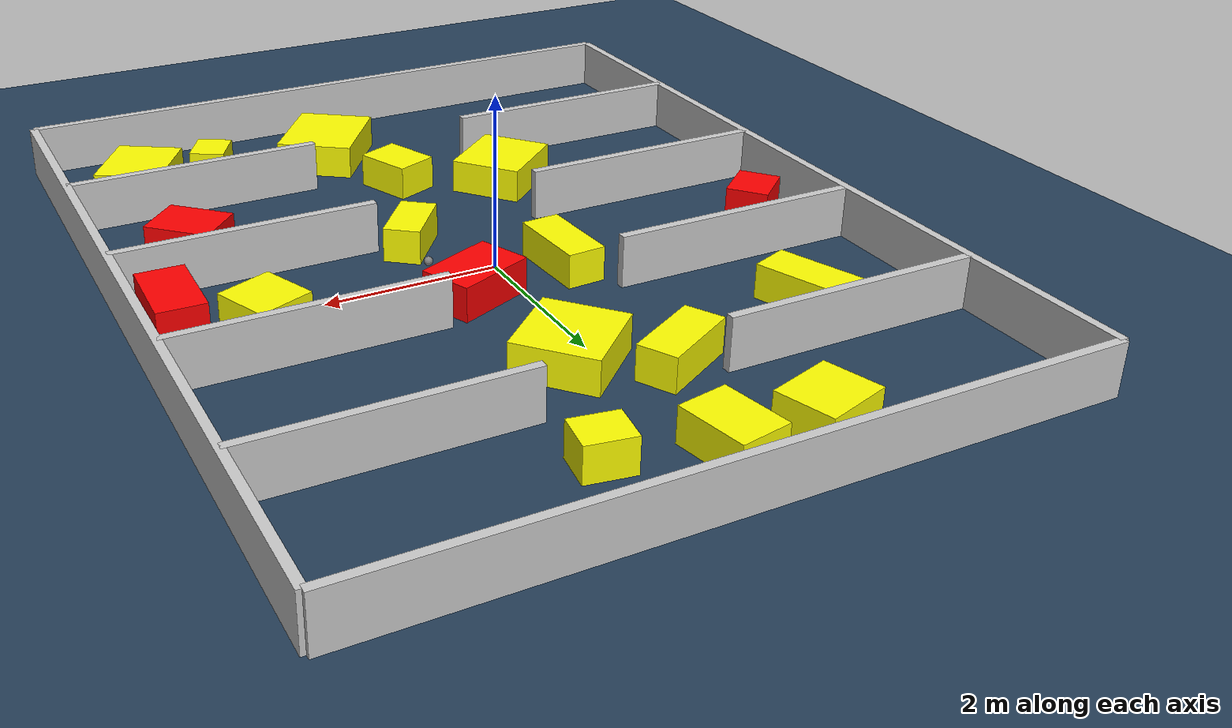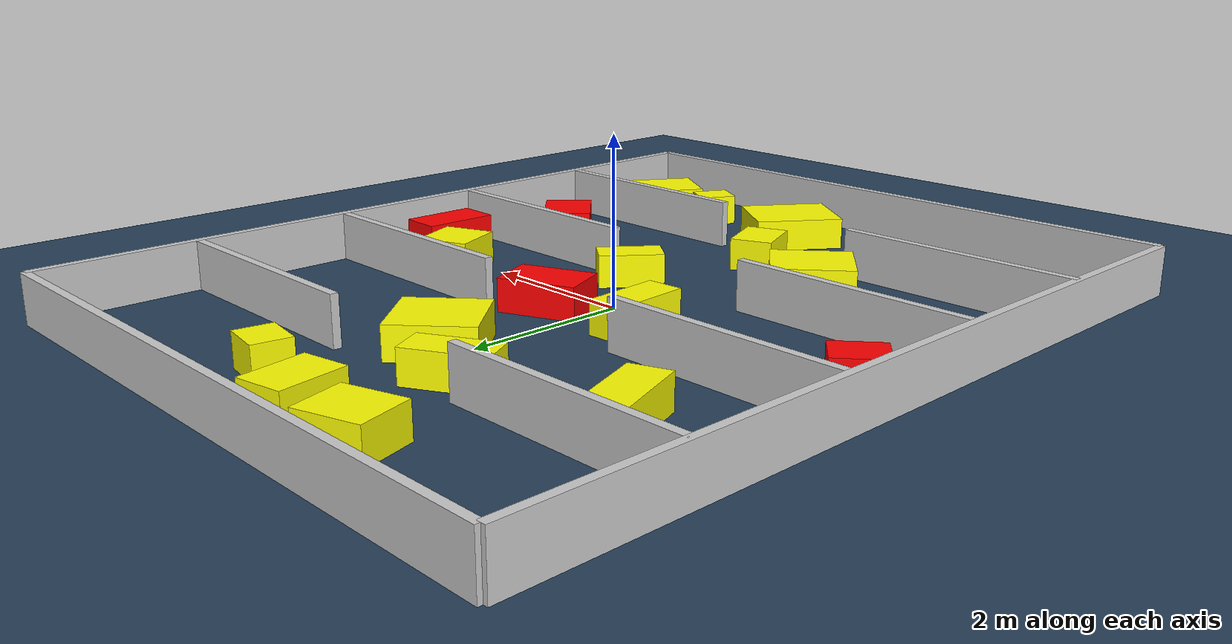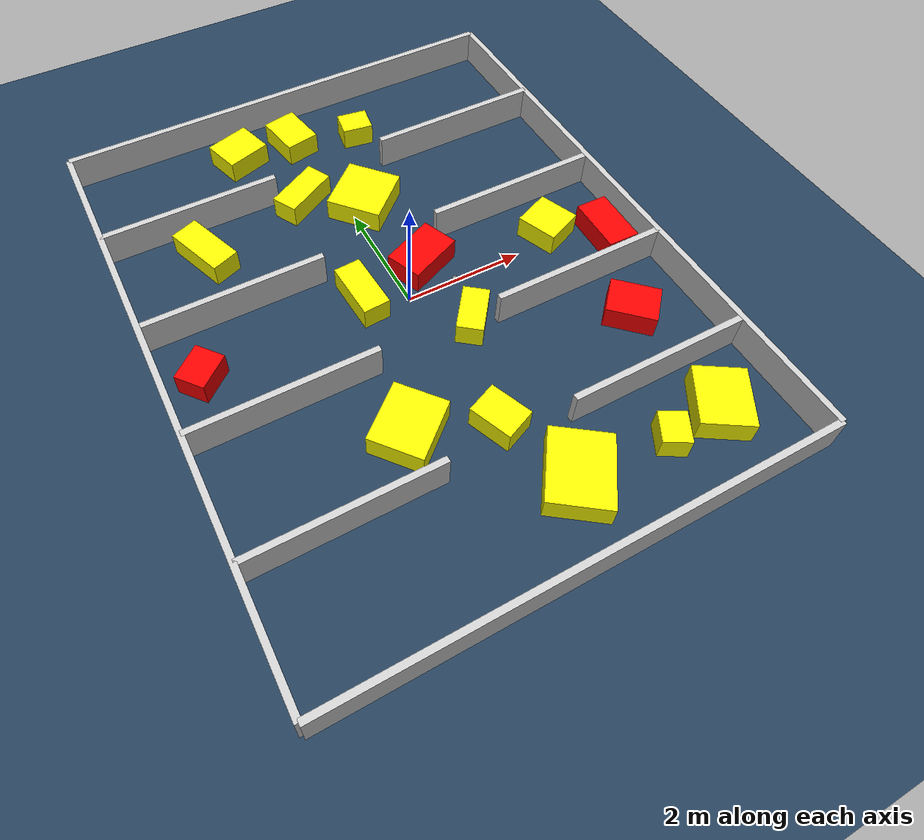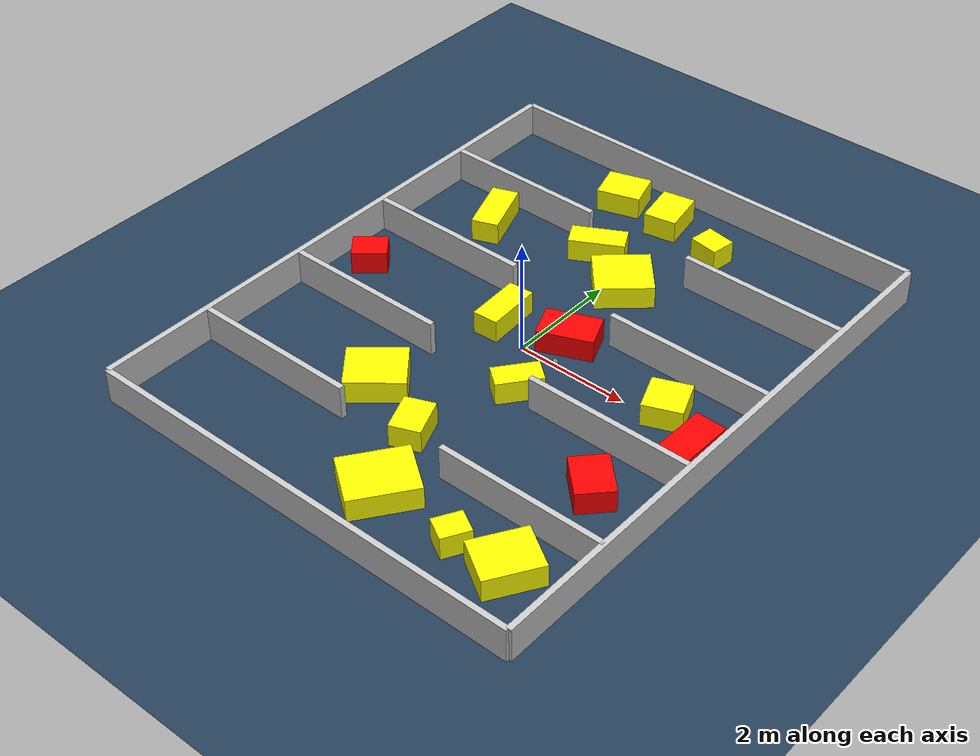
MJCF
<?xml version="1.0" ?>
<mujoco model="generated_environment">
  <option timestep="0.01" integrator="RK4" cone="elliptic"/>
  <default>
    <geom density="1"/>
  </default>
  <asset>
    <texture builtin="gradient" height="3072" rgb1="0.3 0.5 0.7" rgb2="0 0 0" type="skybox" width="512"/>
    <texture builtin="checker" height="300" mark="edge" markrgb="0.8 0.8 0.8" name="groundplane" rgb1="0.2 0.3 0.4" rgb2="0.1 0.2 0.3" type="2d" width="300"/>
    <material name="groundplane" reflectance="0.2" texrepeat="5 5" texture="groundplane" texuniform="true"/>
    <material name="robot" rgba="0.0 1.0 0.0 1"/>
  </asset>
  <worldbody>
    <light dir="0 0 -1" directional="true" pos="0 0 1.5"/>
    <geom condim="4" friction="1.0 0.005 0.001" material="groundplane" name="floor" size="0 0 0.05" type="plane"/>
    <body name="walls">
      <geom name="wall_1" condim="4" pos="-4.0 0.0 0.3" rgba="0.800000011920929 0.800000011920929 0.800000011920929 1.0" size="0.05 5.0 0.3" type="box"/>
      <geom name="wall_2" condim="4" pos="4.0 0.0 0.3" rgba="0.800000011920929 0.800000011920929 0.800000011920929 1.0" size="0.05 5.0 0.3" type="box"/>
      <geom name="wall_3" condim="4" pos="0.0 -5.0 0.3" rgba="0.800000011920929 0.800000011920929 0.800000011920929 1.0" size="4.0 0.05 0.3" type="box"/>
      <geom name="wall_4" condim="4" pos="0.0 5.0 0.3" rgba="0.800000011920929 0.800000011920929 0.800000011920929 1.0" size="4.0 0.05 0.3" type="box"/>
      <geom name="wall_5" condim="4" pos="-2.5 -3.0 0.3" rgba="0.800000011920929 0.800000011920929 0.800000011920929 1.0" size="1.5 0.05 0.3" type="box"/>
      <geom name="wall_6" condim="4" pos="2.5 -3.0 0.3" rgba="0.800000011920929 0.800000011920929 0.800000011920929 1.0" size="1.5 0.05 0.3" type="box"/>
      <geom name="wall_7" condim="4" pos="-2.5 -1.0 0.3" rgba="0.800000011920929 0.800000011920929 0.800000011920929 1.0" size="1.5 0.05 0.3" type="box"/>
      <geom name="wall_8" condim="4" pos="2.5 -1.0 0.3" rgba="0.800000011920929 0.800000011920929 0.800000011920929 1.0" size="1.5 0.05 0.3" type="box"/>
      <geom name="wall_9" condim="4" pos="-2.5 1.0 0.3" rgba="0.800000011920929 0.800000011920929 0.800000011920929 1.0" size="1.5 0.05 0.3" type="box"/>
      <geom name="wall_10" condim="4" pos="2.5 1.0 0.3" rgba="0.800000011920929 0.800000011920929 0.800000011920929 1.0" size="1.5 0.05 0.3" type="box"/>
      <geom name="wall_11" condim="4" pos="-2.5 3.0 0.3" rgba="0.800000011920929 0.800000011920929 0.800000011920929 1.0" size="1.5 0.05 0.3" type="box"/>
      <geom name="wall_12" condim="4" pos="2.5 3.0 0.3" rgba="0.800000011920929 0.800000011920929 0.800000011920929 1.0" size="1.5 0.05 0.3" type="box"/>
    </body>
    <body name="robot">
      <joint name="joint_x" type="slide" pos="0 0 0" axis="1 0 0"/>
      <joint name="joint_y" type="slide" pos="0 0 0" axis="0 1 0"/>
      <geom name="robot" type="sphere" pos="0.7583843118013815 -0.10256202297891726 0.2" size="0.05" mass="5." friction="1.0 0.005 0.0001" condim="4"/>
      <site name="sensor_ball"/>
    </body>
    <body name="obstacle_1_movable">
      <geom name="obstacle_1_movable" condim="4" pos="0.2865558170133058 2.217190555038542 0.2" euler="0 0 311.7478156757852" friction="1.0 0.005 0.001" rgba="1 1 0 1" size="0.4705911863300306 0.49638475673026783 0.2" type="box" mass="0.1"/>
      <joint type="free"/>
    </body>
    <body name="obstacle_2_movable">
      <geom name="obstacle_2_movable" condim="4" pos="2.6987550809773233 0.19558341527432788 0.2" euler="0 0 292.04961330304127" friction="1.0 0.005 0.001" rgba="1 1 0 1" size="0.342054080028713 0.33459863834779424 0.2" type="box" mass="0.1"/>
      <joint type="free"/>
    </body>
    <body name="obstacle_3_movable">
      <geom name="obstacle_3_movable" condim="4" pos="0.636465287025878 -0.8701314566784051 0.2" euler="0 0 321.9725880751502" friction="1.0 0.005 0.001" rgba="1 1 0 1" size="0.21157500947903626 0.39530125548374684 0.2" type="box" mass="0.1"/>
      <joint type="free"/>
    </body>
    <body name="obstacle_4_static">
      <geom name="obstacle_4_static" condim="4" pos="3.5292277702029367 -0.32319399498660406 0.2" euler="0 0 178.79410722002171" friction="1.0 0.005 0.001" rgba="1 0 0 1" size="0.2708374495582662 0.4800443767361908 0.2" type="box"/>
    </body>
    <body name="obstacle_5_static">
      <geom name="obstacle_5_static" condim="4" pos="0.5127297869504517 0.5534545191826705 0.2" euler="0 0 292.79181239488446" friction="1.0 0.005 0.001" rgba="1 0 0 1" size="0.31182502477885987 0.4781306494198289 0.2" type="box"/>
    </body>
    <body name="obstacle_6_movable">
      <geom name="obstacle_6_movable" condim="4" pos="-0.6714854685026834 0.32144227088678257 0.2" euler="0 0 3.3489716296669947" friction="1.0 0.005 0.001" rgba="1 1 0 1" size="0.2246960858683379 0.48843118000764 0.2" type="box" mass="0.1"/>
      <joint type="free"/>
    </body>
    <body name="obstacle_7_movable">
      <geom name="obstacle_7_movable" condim="4" pos="-1.1424824942238936 -2.132274299818384 0.2" euler="0 0 310.0232193512702" friction="1.0 0.005 0.001" rgba="1 1 0 1" size="0.43110880376993965 0.49717765568253713 0.2" type="box" mass="0.1"/>
      <joint type="free"/>
    </body>
    <body name="obstacle_8_movable">
      <geom name="obstacle_8_movable" condim="4" pos="0.5506137656211765 -3.8381464086963177 0.2" euler="0 0 234.40445149276846" friction="1.0 0.005 0.001" rgba="1 1 0 1" size="0.572077559078342 0.46923263673756105 0.2" type="box" mass="0.1"/>
      <joint type="free"/>
    </body>
    <body name="obstacle_9_movable">
      <geom name="obstacle_9_movable" condim="4" pos="0.06345635299782071 -2.603265961558166 0.2" euler="0 0 112.18314944990921" friction="1.0 0.005 0.001" rgba="1 1 0 1" size="0.34870626295183305 0.2636442345064053 0.2" type="box" mass="0.1"/>
      <joint type="free"/>
    </body>
    <body name="obstacle_10_movable">
      <geom name="obstacle_10_movable" condim="4" pos="-2.544477824226585 2.281183805946447 0.2" euler="0 0 110.52955757488446" friction="1.0 0.005 0.001" rgba="1 1 0 1" size="0.526267654341282 0.2376529660022249 0.2" type="box" mass="0.1"/>
      <joint type="free"/>
    </body>
    <body name="obstacle_11_static">
      <geom name="obstacle_11_static" condim="4" pos="2.900369871298849 -1.8785308921356716 0.2" euler="0 0 46.33705308452766" friction="1.0 0.005 0.001" rgba="1 0 0 1" size="0.31474360383506417 0.3968959586034927 0.2" type="box"/>
    </body>
    <body name="obstacle_12_movable">
      <geom name="obstacle_12_movable" condim="4" pos="0.9039754485639286 3.8790020503779 0.2" euler="0 0 261.2241270147863" friction="1.0 0.005 0.001" rgba="1 1 0 1" size="0.22563902305729436 0.26709818966459664 0.2" type="box" mass="0.1"/>
      <joint type="free"/>
    </body>
    <body name="obstacle_13_movable">
      <geom name="obstacle_13_movable" condim="4" pos="2.974502081476832 -3.8585859374178013 0.2" euler="0 0 238.24504983520967" friction="1.0 0.005 0.001" rgba="1 1 0 1" size="0.48244930278954834 0.402263854788285 0.2" type="box" mass="0.1"/>
      <joint type="free"/>
    </body>
    <body name="obstacle_14_movable">
      <geom name="obstacle_14_movable" condim="4" pos="2.04376386527695 -3.934852214017872 0.2" euler="0 0 60.84651737272224" friction="1.0 0.005 0.001" rgba="1 1 0 1" size="0.2476703227446616 0.21454696422619166 0.2" type="box" mass="0.1"/>
      <joint type="free"/>
    </body>
    <body name="obstacle_15_static">
      <geom name="obstacle_15_static" condim="4" pos="-3.400042619921364 0.05702146085366078 0.2" euler="0 0 309.8680205020307" friction="1.0 0.005 0.001" rgba="1 0 0 1" size="0.24771286670406326 0.3031700455071733 0.2" type="box"/>
    </body>
    <body name="obstacle_16_movable">
      <geom name="obstacle_16_movable" condim="4" pos="-0.6389228121253967 2.7400883784220698 0.2" euler="0 0 208.60077541711664" friction="1.0 0.005 0.001" rgba="1 1 0 1" size="0.48520911091864993 0.22427603882101632 0.2" type="box" mass="0.1"/>
      <joint type="free"/>
    </body>
    <body name="obstacle_17_movable">
      <geom name="obstacle_17_movable" condim="4" pos="-0.2262192130368672 4.202356020381283 0.2" euler="0 0 190.65864181350398" friction="1.0 0.005 0.001" rgba="1 1 0 1" size="0.29322515363329643 0.3990357075004003 0.2" type="box" mass="0.1"/>
      <joint type="free"/>
    </body>
    <body name="obstacle_18_movable">
      <geom name="obstacle_18_movable" condim="4" pos="-1.231545625195928 4.2336028945349815 0.2" euler="0 0 17.216449153003065" friction="1.0 0.005 0.001" rgba="1 1 0 1" size="0.38746682406061217 0.32958872186081706 0.2" type="box" mass="0.1"/>
      <joint type="free"/>
    </body>
  </worldbody>
  <actuator>
    <motor name="actuator_x" joint="joint_x" gear="1" ctrlrange="-1 1"/>
    <motor name="actuator_y" joint="joint_y" gear="1" ctrlrange="-1 1"/>
  </actuator>
</mujoco>
